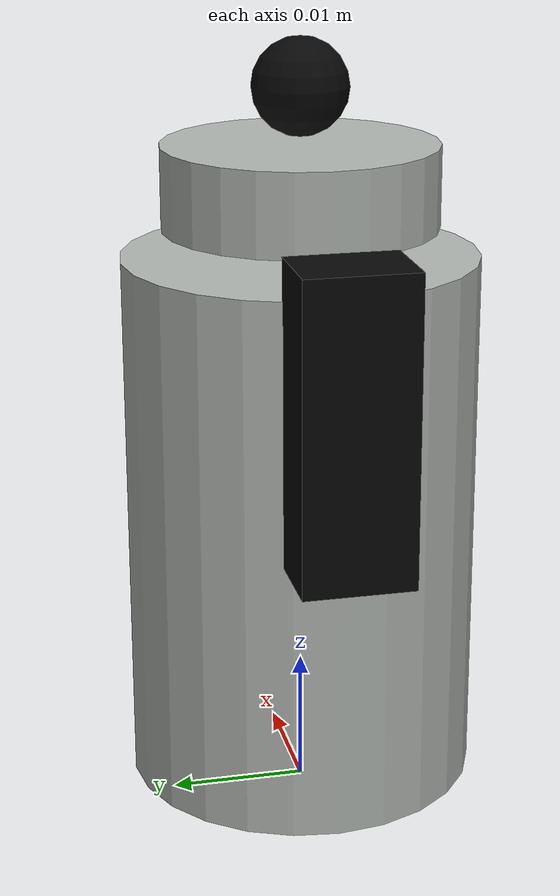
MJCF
<mujoco model="custom_stove_mini_kettle">
  <asset>
    <material name="kettle_metal" rgba="0.70 0.72 0.70 1"/>
    <material name="kettle_black" rgba="0.03 0.03 0.03 1"/>
  </asset>
  <worldbody>
    <body>
      <body name="object">
        <geom name="kettle_col" type="cylinder" size="0.013 0.023" pos="0 0 0.023" rgba="0 0 0 0" density="350" group="0" contype="1" conaffinity="1"/>
        <geom name="kettle_body" type="cylinder" size="0.013 0.020" pos="0 0 0.022" material="kettle_metal" group="1" contype="0" conaffinity="0"/>
        <geom name="kettle_lid" type="cylinder" size="0.010 0.003" pos="0 0 0.047" material="kettle_metal" group="1" contype="0" conaffinity="0"/>
        <geom name="kettle_knob" type="sphere" size="0.0035" pos="0 0 0.054" material="kettle_black" group="1" contype="0" conaffinity="0"/>
        <geom name="kettle_spout" type="box" size="0.006 0.003 0.004" pos="0.016 0 0.033" euler="0 0 0.4" material="kettle_metal" group="1" contype="0" conaffinity="0"/>
        <geom name="kettle_handle" type="box" size="0.003 0.004 0.011" pos="-0.015 0 0.034" material="kettle_black" group="1" contype="0" conaffinity="0"/>
        <geom name="reg_bbox" type="box" size="0.018 0.014 0.029" pos="0.001 0 0.029" rgba="0 0 0 0" group="3" contype="0" conaffinity="0"/>
      </body>
      <site name="bottom_site" pos="0 0 0" size="0.005" rgba="0 0 0 0"/>
      <site name="top_site" pos="0 0 0.058" size="0.005" rgba="0 0 0 0"/>
      <site name="horizontal_radius_site" pos="0.020 0 0.029" size="0.005" rgba="0 0 0 0"/>
    </body>
  </worldbody>
</mujoco>
